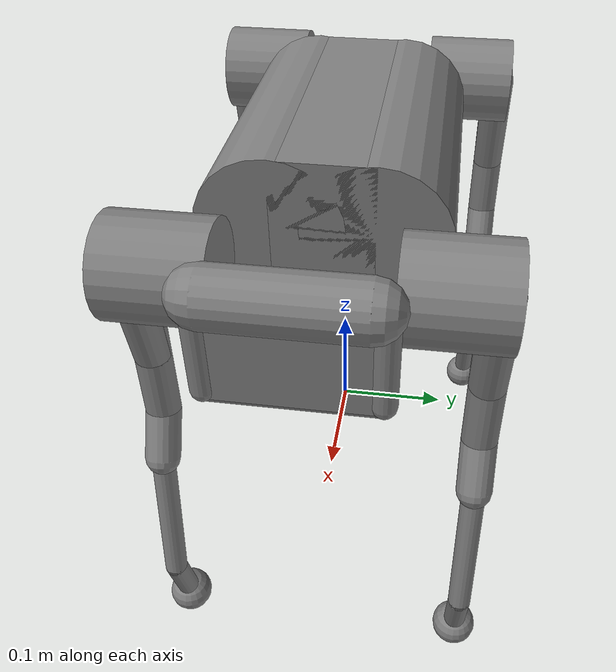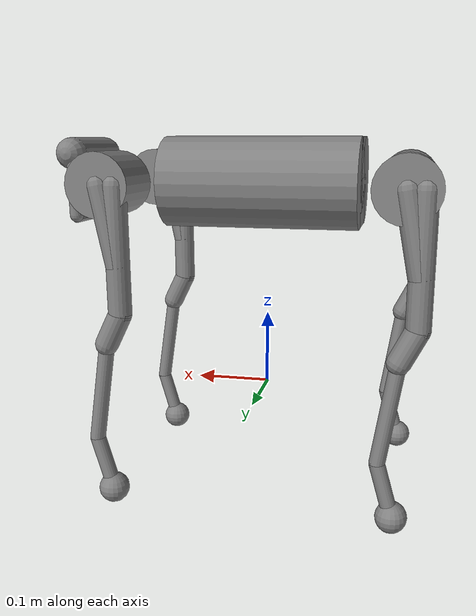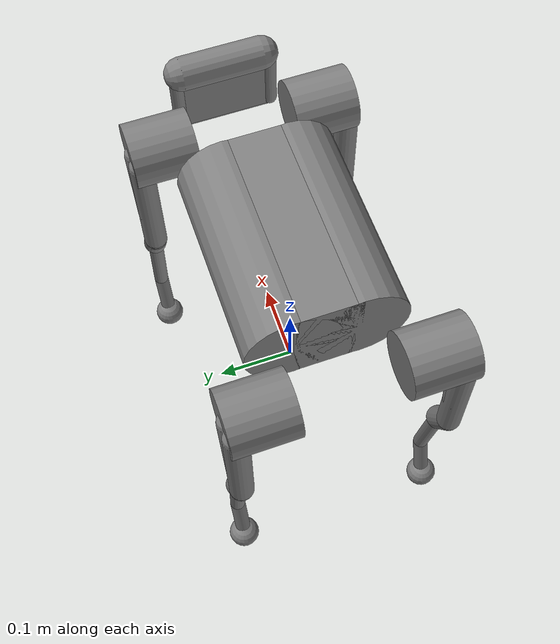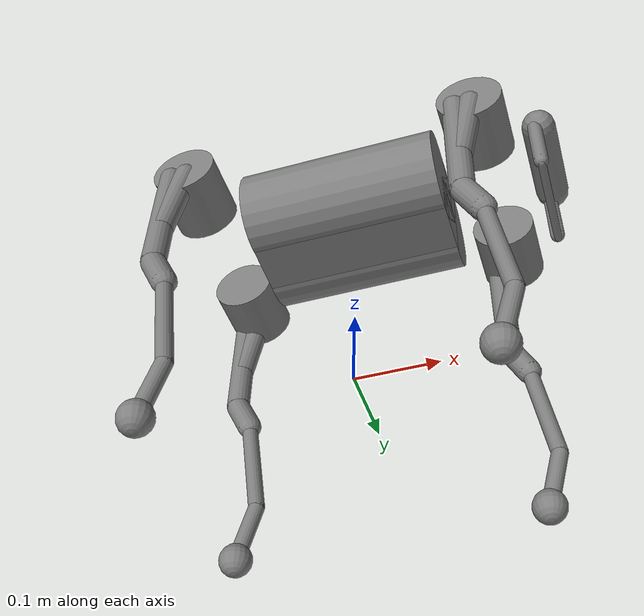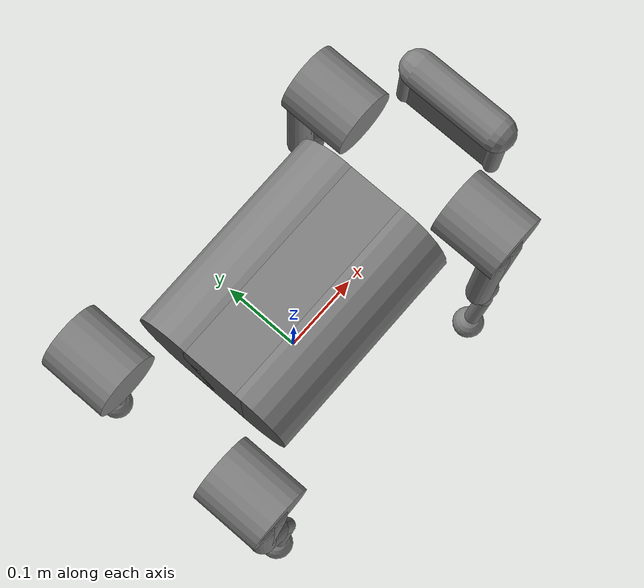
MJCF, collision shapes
<mujoco model="a1">
  <compiler angle="radian" meshdir="assets" texturedir="assets" autolimits="true" />

  <option cone="elliptic" impratio="100">
    <flag sensornoise="enable"/>
  </option>

  <default>
    <default class="a1">
      <geom friction="0.6" margin="0.001" />
      <joint axis="0 1 0" damping="2" armature="0.01" frictionloss="0.2" />
      <position kp="100" forcerange="-33.5 33.5" />
      <default class="abduction">
        <joint axis="1 0 0" damping="1" range="-0.802851 0.802851" />
        <position ctrlrange="-0.802851 0.802851" />
      </default>
      <default class="hip">
        <joint range="-1.0472 4.18879" />
        <position ctrlrange="-1.0472 4.18879" />
      </default>
      <default class="knee">
        <joint range="-2.69653 -0.916298" />
        <position ctrlrange="-2.69653 -0.916298" />
      </default>
      <default class="visual">
        <geom type="mesh" contype="0" conaffinity="0" group="2" material="dark" />
      </default>
      <default class="collision">
        <geom group="3" type="capsule" />
        <default class="hip_left">
          <geom size="0.04 0.04" quat="1 1 0 0" type="cylinder" pos="0 0.055 0" />
        </default>
        <default class="hip_right">
          <geom size="0.04 0.04" quat="1 1 0 0" type="cylinder" pos="0 -0.055 0" />
        </default>
        <default class="thigh1">
          <geom size="0.015" fromto="-0.02 0 0 -0.02 0 -0.16" />
        </default>
        <default class="thigh2">
          <geom size="0.015" fromto="0 0 0 -0.02 0 -0.1" />
        </default>
        <default class="thigh3">
          <geom size="0.015" fromto="-0.02 0 -0.16 0 0 -0.2" />
        </default>
        <default class="calf1">
          <geom size="0.01" fromto="0 0 0 0.02 0 -0.13" />
        </default>
        <default class="calf2">
          <geom size="0.01" fromto="0.02 0 -0.13 0 0 -0.2" />
        </default>
        <default class="foot">
          <geom type="sphere" size="0.02" pos="0 0 -0.2" priority="1"
            solimp="0.015 1 0.031" condim="6"
            friction="0.8 0.02 0.01" />
        </default>
      </default>
    </default>
    <default class="torque">
      <general gainprm="40" ctrllimited="true" ctrlrange="-1 1" />
    </default>
  </default>

  <asset>
    <material name="dark" specular="0" shininess="0.25" rgba="0.2 0.2 0.2 1" />
    <texture type="2d" name="trunk_A1" file="trunk_A1.png" />
    <material name="carbonfibre" texture="trunk_A1" specular="0" shininess="0.25" />

    <mesh class="a1" file="calf.obj" />
    <mesh class="a1" file="hip.obj" />
    <mesh class="a1" file="thigh.obj" />
    <mesh class="a1" file="thigh_mirror.obj" />
    <mesh class="a1" file="trunk.obj" />
  </asset>

  <worldbody>
    <light name="spotlight" mode="targetbodycom" target="trunk" pos="0 -1 2" />
    <body name="trunk" pos="0 0 0.28" childclass="a1">
      <site name="torso" />
      <freejoint />

      <inertial mass="4.713" pos="0 0.0041 -0.0005"
        fullinertia="0.0158533 0.0377999 0.0456542 -3.66e-05 -6.11e-05 -2.75e-05" />
      <geom class="visual" mesh="trunk" material="carbonfibre" />
      <geom class="collision" size="0.125 0.04 0.057" type="box" />
      <geom class="collision" quat="1 0 1 0" pos="0 -0.04 0" size="0.058 0.125"
        type="cylinder" />
      <geom class="collision" quat="1 0 1 0" pos="0 +0.04 0" size="0.058 0.125"
        type="cylinder" />
      <geom class="collision" pos="0.25 0 0" size="0.005 0.06 0.05" type="box" />
      <geom class="collision" pos="0.25 0.06 -0.01" size="0.009 0.035" />
      <geom class="collision" pos="0.25 -0.06 -0.01" size="0.009 0.035" />
      <geom class="collision" pos="0.25 0 -0.05" size="0.005 0.06" quat="1 1 0 0" />
      <geom class="collision" pos="0.255 0 0.0355" size="0.021 0.052" quat="1 1 0 0" />
      <body name="FR_hip" pos="0.183 -0.047 0">
        <inertial mass="0.696" pos="-0.003311 -0.000635 3.1e-05"
          quat="0.507528 0.506268 0.491507 0.494499"
          diaginertia="0.000807752 0.00055293 0.000468983" />
        <joint class="abduction" name="FR_hip_joint" />
        <geom class="visual" mesh="hip" quat="0 1 0 0" />
        <geom class="hip_right" />
        <body name="FR_thigh" pos="0 -0.08505 0">
          <inertial mass="1.013" pos="-0.003237 0.022327 -0.027326"
            quat="0.999125 -0.00256393 -0.0409531 -0.00806091"
            diaginertia="0.00555739 0.00513936 0.00133944" />
          <joint class="hip" name="FR_thigh_joint" />
          <geom class="visual" mesh="thigh_mirror" />
          <geom class="thigh1" />
          <geom class="thigh2" />
          <geom class="thigh3" />
          <body name="FR_calf" pos="0 0 -0.2">
            <inertial mass="0.226" pos="0.00472659 0 -0.131975"
              quat="0.706886 0.017653 0.017653 0.706886"
              diaginertia="0.00340344 0.00339393 3.54834e-05" />
            <joint class="knee" name="FR_calf_joint" />
            <geom class="visual" mesh="calf" />
            <geom class="calf1" />
            <geom class="calf2" />
            <geom class="foot" />
            <site name="FR" pos="0 0 -0.2" type="sphere" size=".015" />
          </body>
        </body>
      </body>
      <body name="FL_hip" pos="0.183 0.047 0">
        <inertial mass="0.696" pos="-0.003311 0.000635 3.1e-05"
          quat="0.494499 0.491507 0.506268 0.507528"
          diaginertia="0.000807752 0.00055293 0.000468983" />
        <joint class="abduction" name="FL_hip_joint" />
        <geom class="visual" mesh="hip" />
        <geom class="hip_left" />
        <geom class="collision" size="0.04 0.04" pos="0 0.055 0" quat="1 1 0 0"
          type="cylinder" />
        <body name="FL_thigh" pos="0 0.08505 0">
          <inertial mass="1.013" pos="-0.003237 -0.022327 -0.027326"
            quat="0.999125 0.00256393 -0.0409531 0.00806091"
            diaginertia="0.00555739 0.00513936 0.00133944" />
          <joint class="hip" name="FL_thigh_joint" />
          <geom class="visual" mesh="thigh" />
          <geom class="thigh1" />
          <geom class="thigh2" />
          <geom class="thigh3" />
          <body name="FL_calf" pos="0 0 -0.2">
            <inertial mass="0.226" pos="0.00472659 0 -0.131975"
              quat="0.706886 0.017653 0.017653 0.706886"
              diaginertia="0.00340344 0.00339393 3.54834e-05" />
            <joint class="knee" name="FL_calf_joint" />
            <geom class="visual" mesh="calf" />
            <geom class="calf1" />
            <geom class="calf2" />
            <geom class="foot" />
            <site name="FL" pos="0 0 -0.2" type="sphere" size=".015" />
          </body>
        </body>
      </body>
      <body name="RR_hip" pos="-0.183 -0.047 0">
        <inertial mass="0.696" pos="0.003311 -0.000635 3.1e-05"
          quat="0.491507 0.494499 0.507528 0.506268"
          diaginertia="0.000807752 0.00055293 0.000468983" />
        <joint class="abduction" name="RR_hip_joint" />
        <geom class="visual" quat="0 0 0 -1" mesh="hip" />
        <geom class="hip_right" />
        <body name="RR_thigh" pos="0 -0.08505 0">
          <inertial mass="1.013" pos="-0.003237 0.022327 -0.027326"
            quat="0.999125 -0.00256393 -0.0409531 -0.00806091"
            diaginertia="0.00555739 0.00513936 0.00133944" />
          <joint class="hip" name="RR_thigh_joint" />
          <geom class="visual" mesh="thigh_mirror" />
          <geom class="thigh1" />
          <geom class="thigh2" />
          <geom class="thigh3" />
          <body name="RR_calf" pos="0 0 -0.2">
            <inertial mass="0.226" pos="0.00472659 0 -0.131975"
              quat="0.706886 0.017653 0.017653 0.706886"
              diaginertia="0.00340344 0.00339393 3.54834e-05" />
            <joint class="knee" name="RR_calf_joint" />
            <geom class="visual" mesh="calf" />
            <geom class="calf1" />
            <geom class="calf2" />
            <geom class="foot" />
            <site name="RR" pos="0 0 -0.2" type="sphere" size=".015" />
          </body>
        </body>
      </body>
      <body name="RL_hip" pos="-0.183 0.047 0">
        <inertial mass="0.696" pos="0.003311 0.000635 3.1e-05"
          quat="0.506268 0.507528 0.494499 0.491507"
          diaginertia="0.000807752 0.00055293 0.000468983" />
        <joint class="abduction" name="RL_hip_joint" />
        <geom class="visual" quat="0 0 1 0" mesh="hip" />
        <geom class="hip_left" />
        <body name="RL_thigh" pos="0 0.08505 0">
          <inertial mass="1.013" pos="-0.003237 -0.022327 -0.027326"
            quat="0.999125 0.00256393 -0.0409531 0.00806091"
            diaginertia="0.00555739 0.00513936 0.00133944" />
          <joint class="hip" name="RL_thigh_joint" />
          <geom class="visual" mesh="thigh" />
          <geom class="thigh1" />
          <geom class="thigh2" />
          <geom class="thigh3" />
          <body name="RL_calf" pos="0 0 -0.2">
            <inertial mass="0.226" pos="0.00472659 0 -0.131975"
              quat="0.706886 0.017653 0.017653 0.706886"
              diaginertia="0.00340344 0.00339393 3.54834e-05" />
            <joint class="knee" name="RL_calf_joint" />
            <geom class="visual" mesh="calf" />
            <geom class="calf1" />
            <geom class="calf2" />
            <geom class="foot" />
            <site name="RL" pos="0 0 -0.2" type="sphere" size=".015" />
          </body>
        </body>
      </body>
    </body>
  </worldbody>

  <actuator>

    <motor joint="FR_hip_joint" name="FR_hip" gear="1" ctrllimited="true" ctrlrange="-100 100" />
    <motor joint="FR_thigh_joint" name="FR_thigh" gear="1" ctrllimited="true"
      ctrlrange="-100 100" />
    <motor joint="FR_calf_joint" name="FR_calf" gear="1" ctrllimited="true" ctrlrange="-100 100" />
    <motor joint="FL_hip_joint" name="FL_hip" gear="1" ctrllimited="true" ctrlrange="-100 100" />
    <motor joint="FL_thigh_joint" name="FL_thigh" gear="1" ctrllimited="true"
      ctrlrange="-100 100" />
    <motor joint="FL_calf_joint" name="FL_calf" gear="1" ctrllimited="true" ctrlrange="-100 100" />
    <motor joint="RR_hip_joint" name="RR_hip" gear="1" ctrllimited="true" ctrlrange="-100 100" />
    <motor joint="RR_thigh_joint" name="RR_thigh" gear="1" ctrllimited="true"
      ctrlrange="-100 100" />
    <motor joint="RR_calf_joint" name="RR_calf" gear="1" ctrllimited="true" ctrlrange="-100 100" />
    <motor joint="RL_hip_joint" name="RL_hip" gear="1" ctrllimited="true" ctrlrange="-100 100" />
    <motor joint="RL_thigh_joint" name="RL_thigh" gear="1" ctrllimited="true"
      ctrlrange="-100 100" />
    <motor joint="RL_calf_joint" name="RL_calf" gear="1" ctrllimited="true" ctrlrange="-100 100" />
  </actuator>

  <sensor>
    <framepos name="torso_pos" objtype="site" objname="torso" noise="0" />
    <framequat name="torso_quat" objtype="site" objname="torso" noise="0.003" />
        <framelinvel name="torso_linvel" objtype="site" objname="torso" noise="0" />
        <frameangvel name="torso_angvel" objtype="site" objname="torso" noise="0.005" />
        <framelinacc name="torso_linacc" objtype="site" objname="torso" noise="0.005" />

    <jointpos name="pos_FR_hip_joint" joint="FR_hip_joint" noise="0.001" />
    <jointpos name="pos_FR_thigh_joint" joint="FR_thigh_joint" noise="0.001" />
    <jointpos name="pos_FR_calf_joint" joint="FR_calf_joint" noise="0.001" />
    <jointpos name="pos_FL_hip_joint" joint="FL_hip_joint" noise="0.001" />
    <jointpos name="pos_FL_thigh_joint" joint="FL_thigh_joint" noise="0.001" />
    <jointpos name="pos_FL_calf_joint" joint="FL_calf_joint" noise="0.001" />
    <jointpos name="pos_RR_hip_joint" joint="RR_hip_joint" noise="0.001" />
    <jointpos name="pos_RR_thigh_joint" joint="RR_thigh_joint" noise="0.001" />
    <jointpos name="pos_RR_calf_joint" joint="RR_calf_joint" noise="0.001" />
    <jointpos name="pos_RL_hip_joint" joint="RL_hip_joint" noise="0.001" />
    <jointpos name="pos_RL_thigh_joint" joint="RL_thigh_joint" noise="0.001" />
    <jointpos name="pos_RL_calf_joint" joint="RL_calf_joint" noise="0.001" />

    <jointvel name="vel_FR_hip_joint" joint="FR_hip_joint" noise="0.1" />
    <jointvel name="vel_FR_thigh_joint" joint="FR_thigh_joint" noise="0.1" />
    <jointvel name="vel_FR_calf_joint" joint="FR_calf_joint" noise="0.1" />
    <jointvel name="vel_FL_hip_joint" joint="FL_hip_joint" noise="0.1" />
    <jointvel name="vel_FL_thigh_joint" joint="FL_thigh_joint" noise="0.1" />
    <jointvel name="vel_FL_calf_joint" joint="FL_calf_joint" noise="0.1" />
    <jointvel name="vel_RR_hip_joint" joint="RR_hip_joint" noise="0.1" />
    <jointvel name="vel_RR_thigh_joint" joint="RR_thigh_joint" noise="0.1" />
    <jointvel name="vel_RR_calf_joint" joint="RR_calf_joint" noise="0.1" />
    <jointvel name="vel_RL_hip_joint" joint="RL_hip_joint" noise="0.1" />
    <jointvel name="vel_RL_thigh_joint" joint="RL_thigh_joint" noise="0.1" />
    <jointvel name="vel_RL_calf_joint" joint="RL_calf_joint" noise="0.1" />

    <framepos name="FR_pos" objtype="site" objname="FR" noise="0.001" />
    <framepos name="FL_pos" objtype="site" objname="FL" noise="0.001" />
    <framepos name="RR_pos" objtype="site" objname="RR" noise="0.001" />
    <framepos name="RL_pos" objtype="site" objname="RL" noise="0.001" />

    <framelinvel name="FR_linvel" objtype="site" objname="FR" noise="0.001" />
    <framelinvel name="FL_linvel" objtype="site" objname="FL" noise="0.001" />
    <framelinvel name="RR_linvel" objtype="site" objname="RR" noise="0.001" />
    <framelinvel name="RL_linvel" objtype="site" objname="RL" noise="0.001" />

    <touch name="FR_touch" site="FR" />
    <touch name="FL_touch" site="FL" />
    <touch name="RR_touch" site="RR" />
    <touch name="RL_touch" site="RL" />

  </sensor>

  <keyframe>
    <key name="home"
      qpos="0 0 0.26
            1 0 0 0
            -0.000341931 0.0181576 -0.0268335
            0.00160968 0.0247957 -0.0270045
            0.00191398 -0.033048 -0.0675298
            -0.00199489 -0.0374747 -0.0681862" />
  </keyframe>

</mujoco>
